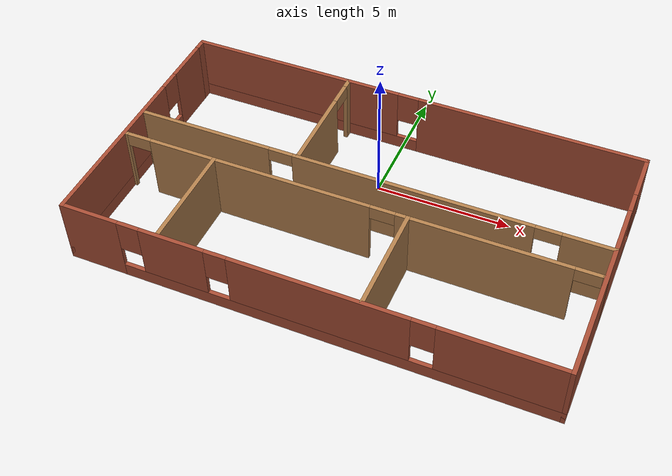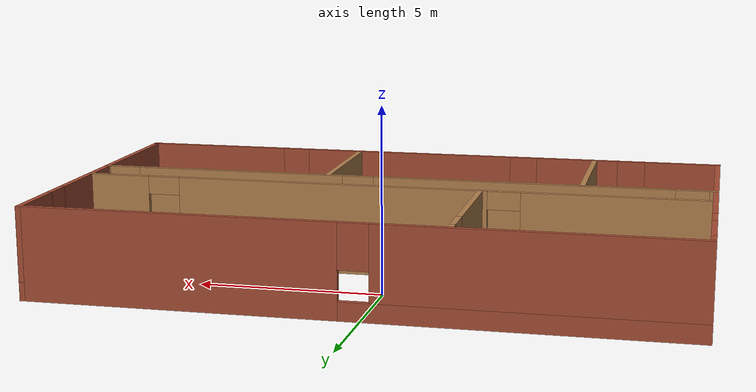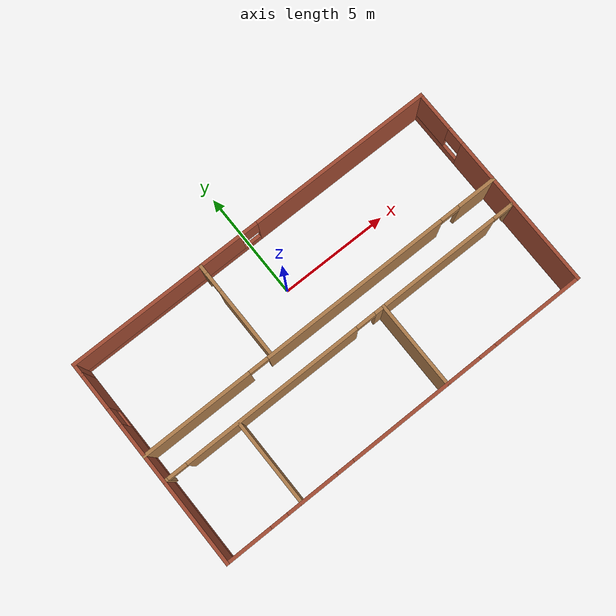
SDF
<?xml version='1.0'?>
<sdf version='1.7'>
  <model name='my_world3'>
    <pose>0.267042 -2.318 0 0 -0 0</pose>
    <link name='Wall_28'>
      <pose>-8.67704 -0.25 0 0 -0 -1.5708</pose>
      <visual name='Wall_28_Visual_0'>
        <pose>-3.7465 0 1.25 0 -0 0</pose>
        <geometry>
          <box>
            <size>1.75701 0.15 2.5</size>
          </box>
        </geometry>
        <material>
          <script>
            <uri>file://media/materials/scripts/gazebo.material</uri>
            <name>Gazebo/Bricks</name>
          </script>
          <ambient>1 1 1 1</ambient>
        </material>
        <meta>
          <layer>0</layer>
        </meta>
      </visual>
      <collision name='Wall_28_Collision_0'>
        <geometry>
          <box>
            <size>1.75701 0.15 2.5</size>
          </box>
        </geometry>
        <pose>-3.7465 0 1.25 0 -0 0</pose>
      </collision>
      <visual name='Wall_28_Visual_1'>
        <pose>0.878504 0 0.25 0 -0 0</pose>
        <geometry>
          <box>
            <size>7.49299 0.15 0.5</size>
          </box>
        </geometry>
        <material>
          <script>
            <uri>file://media/materials/scripts/gazebo.material</uri>
            <name>Gazebo/Bricks</name>
          </script>
          <ambient>1 1 1 1</ambient>
        </material>
        <meta>
          <layer>0</layer>
        </meta>
      </visual>
      <collision name='Wall_28_Collision_1'>
        <geometry>
          <box>
            <size>7.49299 0.15 0.5</size>
          </box>
        </geometry>
        <pose>0.878504 0 0.25 0 -0 0</pose>
      </collision>
      <visual name='Wall_28_Visual_2'>
        <pose>1.2785 0 1.5 0 -0 0</pose>
        <geometry>
          <box>
            <size>6.69299 0.15 2</size>
          </box>
        </geometry>
        <material>
          <script>
            <uri>file://media/materials/scripts/gazebo.material</uri>
            <name>Gazebo/Bricks</name>
          </script>
          <ambient>1 1 1 1</ambient>
        </material>
        <meta>
          <layer>0</layer>
        </meta>
      </visual>
      <collision name='Wall_28_Collision_2'>
        <geometry>
          <box>
            <size>6.69299 0.15 2</size>
          </box>
        </geometry>
        <pose>1.2785 0 1.5 0 -0 0</pose>
      </collision>
      <visual name='Wall_28_Visual_3'>
        <pose>-2.46799 0 1.9 0 -0 0</pose>
        <geometry>
          <box>
            <size>0.8 0.15 1.2</size>
          </box>
        </geometry>
        <material>
          <script>
            <uri>file://media/materials/scripts/gazebo.material</uri>
            <name>Gazebo/Bricks</name>
          </script>
          <ambient>1 1 1 1</ambient>
        </material>
        <meta>
          <layer>0</layer>
        </meta>
      </visual>
      <collision name='Wall_28_Collision_3'>
        <geometry>
          <box>
            <size>0.8 0.15 1.2</size>
          </box>
        </geometry>
        <pose>-2.46799 0 1.9 0 -0 0</pose>
      </collision>
    </link>
    <link name='Wall_29'>
      <pose>-0.002042 -4.8 0 0 -0 0</pose>
      <visual name='Wall_29_Visual_0'>
        <pose>-7.66342 0 1.25 0 -0 0</pose>
        <geometry>
          <box>
            <size>2.17317 0.15 2.5</size>
          </box>
        </geometry>
        <material>
          <script>
            <uri>file://media/materials/scripts/gazebo.material</uri>
            <name>Gazebo/Bricks</name>
          </script>
          <ambient>1 1 1 1</ambient>
        </material>
        <meta>
          <layer>0</layer>
        </meta>
      </visual>
      <collision name='Wall_29_Collision_0'>
        <geometry>
          <box>
            <size>2.17317 0.15 2.5</size>
          </box>
        </geometry>
        <pose>-7.66342 0 1.25 0 -0 0</pose>
      </collision>
      <visual name='Wall_29_Visual_1'>
        <pose>1.08658 0 0.25 0 -0 0</pose>
        <geometry>
          <box>
            <size>15.3268 0.15 0.5</size>
          </box>
        </geometry>
        <material>
          <script>
            <uri>file://media/materials/scripts/gazebo.material</uri>
            <name>Gazebo/Bricks</name>
          </script>
          <ambient>1 1 1 1</ambient>
        </material>
        <meta>
          <layer>0</layer>
        </meta>
      </visual>
      <collision name='Wall_29_Collision_1'>
        <geometry>
          <box>
            <size>15.3268 0.15 0.5</size>
          </box>
        </geometry>
        <pose>1.08658 0 0.25 0 -0 0</pose>
      </collision>
      <visual name='Wall_29_Visual_2'>
        <pose>-4.58116 0 1.5 0 -0 0</pose>
        <geometry>
          <box>
            <size>2.39135 0.15 2</size>
          </box>
        </geometry>
        <material>
          <script>
            <uri>file://media/materials/scripts/gazebo.material</uri>
            <name>Gazebo/Bricks</name>
          </script>
          <ambient>1 1 1 1</ambient>
        </material>
        <meta>
          <layer>0</layer>
        </meta>
      </visual>
      <collision name='Wall_29_Collision_2'>
        <geometry>
          <box>
            <size>2.39135 0.15 2</size>
          </box>
        </geometry>
        <pose>-4.58116 0 1.5 0 -0 0</pose>
      </collision>
      <visual name='Wall_29_Visual_3'>
        <pose>0.5411 0 1.5 0 -0 0</pose>
        <geometry>
          <box>
            <size>6.25316 0.15 2</size>
          </box>
        </geometry>
        <material>
          <script>
            <uri>file://media/materials/scripts/gazebo.material</uri>
            <name>Gazebo/Bricks</name>
          </script>
          <ambient>1 1 1 1</ambient>
        </material>
        <meta>
          <layer>0</layer>
        </meta>
      </visual>
      <collision name='Wall_29_Collision_3'>
        <geometry>
          <box>
            <size>6.25316 0.15 2</size>
          </box>
        </geometry>
        <pose>0.5411 0 1.5 0 -0 0</pose>
      </collision>
      <visual name='Wall_29_Visual_4'>
        <pose>6.60884 0 1.5 0 -0 0</pose>
        <geometry>
          <box>
            <size>4.28232 0.15 2</size>
          </box>
        </geometry>
        <material>
          <script>
            <uri>file://media/materials/scripts/gazebo.material</uri>
            <name>Gazebo/Bricks</name>
          </script>
          <ambient>1 1 1 1</ambient>
        </material>
        <meta>
          <layer>0</layer>
        </meta>
      </visual>
      <collision name='Wall_29_Collision_4'>
        <geometry>
          <box>
            <size>4.28232 0.15 2</size>
          </box>
        </geometry>
        <pose>6.60884 0 1.5 0 -0 0</pose>
      </collision>
      <visual name='Wall_29_Visual_5'>
        <pose>-6.17683 0 1.9 0 -0 0</pose>
        <geometry>
          <box>
            <size>0.8 0.15 1.2</size>
          </box>
        </geometry>
        <material>
          <script>
            <uri>file://media/materials/scripts/gazebo.material</uri>
            <name>Gazebo/Bricks</name>
          </script>
          <ambient>1 1 1 1</ambient>
        </material>
        <meta>
          <layer>0</layer>
        </meta>
      </visual>
      <collision name='Wall_29_Collision_5'>
        <geometry>
          <box>
            <size>0.8 0.15 1.2</size>
          </box>
        </geometry>
        <pose>-6.17683 0 1.9 0 -0 0</pose>
      </collision>
      <visual name='Wall_29_Visual_6'>
        <pose>-2.98548 0 1.9 0 -0 0</pose>
        <geometry>
          <box>
            <size>0.8 0.15 1.2</size>
          </box>
        </geometry>
        <material>
          <script>
            <uri>file://media/materials/scripts/gazebo.material</uri>
            <name>Gazebo/Bricks</name>
          </script>
          <ambient>1 1 1 1</ambient>
        </material>
        <meta>
          <layer>0</layer>
        </meta>
      </visual>
      <collision name='Wall_29_Collision_6'>
        <geometry>
          <box>
            <size>0.8 0.15 1.2</size>
          </box>
        </geometry>
        <pose>-2.98548 0 1.9 0 -0 0</pose>
      </collision>
      <visual name='Wall_29_Visual_7'>
        <pose>4.06768 0 1.9 0 -0 0</pose>
        <geometry>
          <box>
            <size>0.8 0.15 1.2</size>
          </box>
        </geometry>
        <material>
          <script>
            <uri>file://media/materials/scripts/gazebo.material</uri>
            <name>Gazebo/Bricks</name>
          </script>
          <ambient>1 1 1 1</ambient>
        </material>
        <meta>
          <layer>0</layer>
        </meta>
      </visual>
      <collision name='Wall_29_Collision_7'>
        <geometry>
          <box>
            <size>0.8 0.15 1.2</size>
          </box>
        </geometry>
        <pose>4.06768 0 1.9 0 -0 0</pose>
      </collision>
    </link>
    <link name='Wall_30'>
      <pose>8.67296 0 0 0 -0 1.5708</pose>
      <visual name='Wall_30_Visual_0'>
        <pose>-1.32737 0 1.25 0 -0 0</pose>
        <geometry>
          <box>
            <size>7.09526 0.15 2.5</size>
          </box>
        </geometry>
        <material>
          <script>
            <uri>file://media/materials/scripts/gazebo.material</uri>
            <name>Gazebo/Bricks</name>
          </script>
          <ambient>1 1 1 1</ambient>
        </material>
        <meta>
          <layer>0</layer>
        </meta>
      </visual>
      <collision name='Wall_30_Collision_0'>
        <geometry>
          <box>
            <size>7.09526 0.15 2.5</size>
          </box>
        </geometry>
        <pose>-1.32737 0 1.25 0 -0 0</pose>
      </collision>
      <visual name='Wall_30_Visual_1'>
        <pose>3.54763 0 0.25 0 -0 0</pose>
        <geometry>
          <box>
            <size>2.65474 0.15 0.5</size>
          </box>
        </geometry>
        <material>
          <script>
            <uri>file://media/materials/scripts/gazebo.material</uri>
            <name>Gazebo/Bricks</name>
          </script>
          <ambient>1 1 1 1</ambient>
        </material>
        <meta>
          <layer>0</layer>
        </meta>
      </visual>
      <collision name='Wall_30_Collision_1'>
        <geometry>
          <box>
            <size>2.65474 0.15 0.5</size>
          </box>
        </geometry>
        <pose>3.54763 0 0.25 0 -0 0</pose>
      </collision>
      <visual name='Wall_30_Visual_2'>
        <pose>3.94763 0 1.5 0 -0 0</pose>
        <geometry>
          <box>
            <size>1.85474 0.15 2</size>
          </box>
        </geometry>
        <material>
          <script>
            <uri>file://media/materials/scripts/gazebo.material</uri>
            <name>Gazebo/Bricks</name>
          </script>
          <ambient>1 1 1 1</ambient>
        </material>
        <meta>
          <layer>0</layer>
        </meta>
      </visual>
      <collision name='Wall_30_Collision_2'>
        <geometry>
          <box>
            <size>1.85474 0.15 2</size>
          </box>
        </geometry>
        <pose>3.94763 0 1.5 0 -0 0</pose>
      </collision>
      <visual name='Wall_30_Visual_3'>
        <pose>2.62026 0 1.9 0 -0 0</pose>
        <geometry>
          <box>
            <size>0.8 0.15 1.2</size>
          </box>
        </geometry>
        <material>
          <script>
            <uri>file://media/materials/scripts/gazebo.material</uri>
            <name>Gazebo/Bricks</name>
          </script>
          <ambient>1 1 1 1</ambient>
        </material>
        <meta>
          <layer>0</layer>
        </meta>
      </visual>
      <collision name='Wall_30_Collision_3'>
        <geometry>
          <box>
            <size>0.8 0.15 1.2</size>
          </box>
        </geometry>
        <pose>2.62026 0 1.9 0 -0 0</pose>
      </collision>
    </link>
    <link name='Wall_31'>
      <pose>-0.002042 4.8 0 0 -0 3.14159</pose>
      <visual name='Wall_31_Visual_0'>
        <pose>-4.51703 0 1.25 0 -0 0</pose>
        <geometry>
          <box>
            <size>8.46594 0.15 2.5</size>
          </box>
        </geometry>
        <material>
          <script>
            <uri>file://media/materials/scripts/gazebo.material</uri>
            <name>Gazebo/Bricks</name>
          </script>
          <ambient>1 1 1 1</ambient>
        </material>
        <meta>
          <layer>0</layer>
        </meta>
      </visual>
      <collision name='Wall_31_Collision_0'>
        <geometry>
          <box>
            <size>8.46594 0.15 2.5</size>
          </box>
        </geometry>
        <pose>-4.51703 0 1.25 0 -0 0</pose>
      </collision>
      <visual name='Wall_31_Visual_1'>
        <pose>4.23297 0 0.25 0 -0 0</pose>
        <geometry>
          <box>
            <size>9.03406 0.15 0.5</size>
          </box>
        </geometry>
        <material>
          <script>
            <uri>file://media/materials/scripts/gazebo.material</uri>
            <name>Gazebo/Bricks</name>
          </script>
          <ambient>1 1 1 1</ambient>
        </material>
        <meta>
          <layer>0</layer>
        </meta>
      </visual>
      <collision name='Wall_31_Collision_1'>
        <geometry>
          <box>
            <size>9.03406 0.15 0.5</size>
          </box>
        </geometry>
        <pose>4.23297 0 0.25 0 -0 0</pose>
      </collision>
      <visual name='Wall_31_Visual_2'>
        <pose>4.63297 0 1.5 0 -0 0</pose>
        <geometry>
          <box>
            <size>8.23406 0.15 2</size>
          </box>
        </geometry>
        <material>
          <script>
            <uri>file://media/materials/scripts/gazebo.material</uri>
            <name>Gazebo/Bricks</name>
          </script>
          <ambient>1 1 1 1</ambient>
        </material>
        <meta>
          <layer>0</layer>
        </meta>
      </visual>
      <collision name='Wall_31_Collision_2'>
        <geometry>
          <box>
            <size>8.23406 0.15 2</size>
          </box>
        </geometry>
        <pose>4.63297 0 1.5 0 -0 0</pose>
      </collision>
      <visual name='Wall_31_Visual_3'>
        <pose>0.115943 0 1.9 0 -0 0</pose>
        <geometry>
          <box>
            <size>0.8 0.15 1.2</size>
          </box>
        </geometry>
        <material>
          <script>
            <uri>file://media/materials/scripts/gazebo.material</uri>
            <name>Gazebo/Bricks</name>
          </script>
          <ambient>1 1 1 1</ambient>
        </material>
        <meta>
          <layer>0</layer>
        </meta>
      </visual>
      <collision name='Wall_31_Collision_3'>
        <geometry>
          <box>
            <size>0.8 0.15 1.2</size>
          </box>
        </geometry>
        <pose>0.115943 0 1.9 0 -0 0</pose>
      </collision>
    </link>
    <link name='Wall_32'>
      <collision name='Wall_32_Collision'>
        <geometry>
          <box>
            <size>0.65 0.15 2.5</size>
          </box>
        </geometry>
        <pose>0 0 1.25 0 -0 0</pose>
      </collision>
      <visual name='Wall_32_Visual'>
        <pose>0 0 1.25 0 -0 0</pose>
        <geometry>
          <box>
            <size>0.65 0.15 2.5</size>
          </box>
        </geometry>
        <material>
          <script>
            <uri>file://media/materials/scripts/gazebo.material</uri>
            <name>Gazebo/Bricks</name>
          </script>
          <ambient>1 1 1 1</ambient>
        </material>
        <meta>
          <layer>0</layer>
        </meta>
      </visual>
      <pose>-8.67704 4.55 0 0 -0 -1.5708</pose>
    </link>
    <link name='Wall_34'>
      <pose>-0.002042 0.321 0 0 -0 0</pose>
      <visual name='Wall_34_Visual_0'>
        <pose>-6.17319 0 1.25 0 -0 0</pose>
        <geometry>
          <box>
            <size>5.15361 0.15 2.5</size>
          </box>
        </geometry>
        <material>
          <script>
            <uri>file://media/materials/scripts/gazebo.material</uri>
            <name>Gazebo/Wood</name>
          </script>
          <ambient>1 1 1 1</ambient>
        </material>
        <meta>
          <layer>0</layer>
        </meta>
      </visual>
      <collision name='Wall_34_Collision_0'>
        <geometry>
          <box>
            <size>5.15361 0.15 2.5</size>
          </box>
        </geometry>
        <pose>-6.17319 0 1.25 0 -0 0</pose>
      </collision>
      <visual name='Wall_34_Visual_1'>
        <pose>1.65405 0 1.25 0 -0 0</pose>
        <geometry>
          <box>
            <size>8.70088 0.15 2.5</size>
          </box>
        </geometry>
        <material>
          <script>
            <uri>file://media/materials/scripts/gazebo.material</uri>
            <name>Gazebo/Wood</name>
          </script>
          <ambient>1 1 1 1</ambient>
        </material>
        <meta>
          <layer>0</layer>
        </meta>
      </visual>
      <collision name='Wall_34_Collision_1'>
        <geometry>
          <box>
            <size>8.70088 0.15 2.5</size>
          </box>
        </geometry>
        <pose>1.65405 0 1.25 0 -0 0</pose>
      </collision>
      <visual name='Wall_34_Visual_2'>
        <pose>7.82724 0 1.25 0 -0 0</pose>
        <geometry>
          <box>
            <size>1.84551 0.15 2.5</size>
          </box>
        </geometry>
        <material>
          <script>
            <uri>file://media/materials/scripts/gazebo.material</uri>
            <name>Gazebo/Wood</name>
          </script>
          <ambient>1 1 1 1</ambient>
        </material>
        <meta>
          <layer>0</layer>
        </meta>
      </visual>
      <collision name='Wall_34_Collision_2'>
        <geometry>
          <box>
            <size>1.84551 0.15 2.5</size>
          </box>
        </geometry>
        <pose>7.82724 0 1.25 0 -0 0</pose>
      </collision>
      <visual name='Wall_34_Visual_3'>
        <pose>-3.14639 0 2.25 0 -0 0</pose>
        <geometry>
          <box>
            <size>0.9 0.15 0.5</size>
          </box>
        </geometry>
        <material>
          <script>
            <uri>file://media/materials/scripts/gazebo.material</uri>
            <name>Gazebo/Wood</name>
          </script>
          <ambient>1 1 1 1</ambient>
        </material>
        <meta>
          <layer>0</layer>
        </meta>
      </visual>
      <collision name='Wall_34_Collision_3'>
        <geometry>
          <box>
            <size>0.9 0.15 0.5</size>
          </box>
        </geometry>
        <pose>-3.14639 0 2.25 0 -0 0</pose>
      </collision>
      <visual name='Wall_34_Visual_4'>
        <pose>6.45449 0 2.25 0 -0 0</pose>
        <geometry>
          <box>
            <size>0.9 0.15 0.5</size>
          </box>
        </geometry>
        <material>
          <script>
            <uri>file://media/materials/scripts/gazebo.material</uri>
            <name>Gazebo/Wood</name>
          </script>
          <ambient>1 1 1 1</ambient>
        </material>
        <meta>
          <layer>0</layer>
        </meta>
      </visual>
      <collision name='Wall_34_Collision_4'>
        <geometry>
          <box>
            <size>0.9 0.15 0.5</size>
          </box>
        </geometry>
        <pose>6.45449 0 2.25 0 -0 0</pose>
      </collision>
    </link>
    <link name='Wall_36'>
      <pose>-2.5048 2.59071 0 0 -0 -1.5708</pose>
      <visual name='Wall_36_Visual_0'>
        <pose>-2.04864 0 1.25 0 -0 0</pose>
        <geometry>
          <box>
            <size>0.402725 0.15 2.5</size>
          </box>
        </geometry>
        <material>
          <script>
            <uri>file://media/materials/scripts/gazebo.material</uri>
            <name>Gazebo/Wood</name>
          </script>
          <ambient>1 1 1 1</ambient>
        </material>
        <meta>
          <layer>0</layer>
        </meta>
      </visual>
      <collision name='Wall_36_Collision_0'>
        <geometry>
          <box>
            <size>0.402725 0.15 2.5</size>
          </box>
        </geometry>
        <pose>-2.04864 0 1.25 0 -0 0</pose>
      </collision>
      <visual name='Wall_36_Visual_1'>
        <pose>0.651362 0 1.25 0 -0 0</pose>
        <geometry>
          <box>
            <size>3.19727 0.15 2.5</size>
          </box>
        </geometry>
        <material>
          <script>
            <uri>file://media/materials/scripts/gazebo.material</uri>
            <name>Gazebo/Wood</name>
          </script>
          <ambient>1 1 1 1</ambient>
        </material>
        <meta>
          <layer>0</layer>
        </meta>
      </visual>
      <collision name='Wall_36_Collision_1'>
        <geometry>
          <box>
            <size>3.19727 0.15 2.5</size>
          </box>
        </geometry>
        <pose>0.651362 0 1.25 0 -0 0</pose>
      </collision>
      <visual name='Wall_36_Visual_2'>
        <pose>-1.39728 0 2.25 0 -0 0</pose>
        <geometry>
          <box>
            <size>0.9 0.15 0.5</size>
          </box>
        </geometry>
        <material>
          <script>
            <uri>file://media/materials/scripts/gazebo.material</uri>
            <name>Gazebo/Wood</name>
          </script>
          <ambient>1 1 1 1</ambient>
        </material>
        <meta>
          <layer>0</layer>
        </meta>
      </visual>
      <collision name='Wall_36_Collision_2'>
        <geometry>
          <box>
            <size>0.9 0.15 0.5</size>
          </box>
        </geometry>
        <pose>-1.39728 0 2.25 0 -0 0</pose>
      </collision>
    </link>
    <link name='Wall_40'>
      <pose>0.002043 -0.919726 0 0 -0 0</pose>
      <visual name='Wall_40_Visual_0'>
        <pose>-8.62909 0 1.25 0 -0 0</pose>
        <geometry>
          <box>
            <size>0.241816 0.15 2.5</size>
          </box>
        </geometry>
        <material>
          <script>
            <uri>file://media/materials/scripts/gazebo.material</uri>
            <name>Gazebo/Wood</name>
          </script>
          <ambient>1 1 1 1</ambient>
        </material>
        <meta>
          <layer>0</layer>
        </meta>
      </visual>
      <collision name='Wall_40_Collision_0'>
        <geometry>
          <box>
            <size>0.241816 0.15 2.5</size>
          </box>
        </geometry>
        <pose>-8.62909 0 1.25 0 -0 0</pose>
      </collision>
      <visual name='Wall_40_Visual_1'>
        <pose>-3.44547 0 1.25 0 -0 0</pose>
        <geometry>
          <box>
            <size>8.32542 0.15 2.5</size>
          </box>
        </geometry>
        <material>
          <script>
            <uri>file://media/materials/scripts/gazebo.material</uri>
            <name>Gazebo/Wood</name>
          </script>
          <ambient>1 1 1 1</ambient>
        </material>
        <meta>
          <layer>0</layer>
        </meta>
      </visual>
      <collision name='Wall_40_Collision_1'>
        <geometry>
          <box>
            <size>8.32542 0.15 2.5</size>
          </box>
        </geometry>
        <pose>-3.44547 0 1.25 0 -0 0</pose>
      </collision>
      <visual name='Wall_40_Visual_2'>
        <pose>4.64018 0 1.25 0 -0 0</pose>
        <geometry>
          <box>
            <size>6.04589 0.15 2.5</size>
          </box>
        </geometry>
        <material>
          <script>
            <uri>file://media/materials/scripts/gazebo.material</uri>
            <name>Gazebo/Wood</name>
          </script>
          <ambient>1 1 1 1</ambient>
        </material>
        <meta>
          <layer>0</layer>
        </meta>
      </visual>
      <collision name='Wall_40_Collision_2'>
        <geometry>
          <box>
            <size>6.04589 0.15 2.5</size>
          </box>
        </geometry>
        <pose>4.64018 0 1.25 0 -0 0</pose>
      </collision>
      <visual name='Wall_40_Visual_3'>
        <pose>8.65656 0 1.25 0 -0 0</pose>
        <geometry>
          <box>
            <size>0.186872 0.15 2.5</size>
          </box>
        </geometry>
        <material>
          <script>
            <uri>file://media/materials/scripts/gazebo.material</uri>
            <name>Gazebo/Wood</name>
          </script>
          <ambient>1 1 1 1</ambient>
        </material>
        <meta>
          <layer>0</layer>
        </meta>
      </visual>
      <collision name='Wall_40_Collision_3'>
        <geometry>
          <box>
            <size>0.186872 0.15 2.5</size>
          </box>
        </geometry>
        <pose>8.65656 0 1.25 0 -0 0</pose>
      </collision>
      <visual name='Wall_40_Visual_4'>
        <pose>-8.05818 0 2.25 0 -0 0</pose>
        <geometry>
          <box>
            <size>0.9 0.15 0.5</size>
          </box>
        </geometry>
        <material>
          <script>
            <uri>file://media/materials/scripts/gazebo.material</uri>
            <name>Gazebo/Wood</name>
          </script>
          <ambient>1 1 1 1</ambient>
        </material>
        <meta>
          <layer>0</layer>
        </meta>
      </visual>
      <collision name='Wall_40_Collision_4'>
        <geometry>
          <box>
            <size>0.9 0.15 0.5</size>
          </box>
        </geometry>
        <pose>-8.05818 0 2.25 0 -0 0</pose>
      </collision>
      <visual name='Wall_40_Visual_5'>
        <pose>1.16724 0 2.25 0 -0 0</pose>
        <geometry>
          <box>
            <size>0.9 0.15 0.5</size>
          </box>
        </geometry>
        <material>
          <script>
            <uri>file://media/materials/scripts/gazebo.material</uri>
            <name>Gazebo/Wood</name>
          </script>
          <ambient>1 1 1 1</ambient>
        </material>
        <meta>
          <layer>0</layer>
        </meta>
      </visual>
      <collision name='Wall_40_Collision_5'>
        <geometry>
          <box>
            <size>0.9 0.15 0.5</size>
          </box>
        </geometry>
        <pose>1.16724 0 2.25 0 -0 0</pose>
      </collision>
      <visual name='Wall_40_Visual_6'>
        <pose>8.11313 0 2.25 0 -0 0</pose>
        <geometry>
          <box>
            <size>0.9 0.15 0.5</size>
          </box>
        </geometry>
        <material>
          <script>
            <uri>file://media/materials/scripts/gazebo.material</uri>
            <name>Gazebo/Wood</name>
          </script>
          <ambient>1 1 1 1</ambient>
        </material>
        <meta>
          <layer>0</layer>
        </meta>
      </visual>
      <collision name='Wall_40_Collision_6'>
        <geometry>
          <box>
            <size>0.9 0.15 0.5</size>
          </box>
        </geometry>
        <pose>8.11313 0 2.25 0 -0 0</pose>
      </collision>
    </link>
    <link name='Wall_42'>
      <collision name='Wall_42_Collision'>
        <geometry>
          <box>
            <size>4 0.15 2.5</size>
          </box>
        </geometry>
        <pose>0 0 1.25 0 -0 0</pose>
      </collision>
      <visual name='Wall_42_Visual'>
        <pose>0 0 1.25 0 -0 0</pose>
        <geometry>
          <box>
            <size>4 0.15 2.5</size>
          </box>
        </geometry>
        <material>
          <script>
            <uri>file://media/materials/scripts/gazebo.material</uri>
            <name>Gazebo/Wood</name>
          </script>
          <ambient>1 1 1 1</ambient>
        </material>
        <meta>
          <layer>0</layer>
        </meta>
      </visual>
      <pose>-5.10615 -2.84473 0 0 -0 -1.5708</pose>
    </link>
    <link name='Wall_45'>
      <collision name='Wall_45_Collision'>
        <geometry>
          <box>
            <size>4 0.15 2.5</size>
          </box>
        </geometry>
        <pose>0 0 1.25 0 -0 0</pose>
      </collision>
      <visual name='Wall_45_Visual'>
        <pose>0 0 1.25 0 -0 0</pose>
        <geometry>
          <box>
            <size>4 0.15 2.5</size>
          </box>
        </geometry>
        <material>
          <script>
            <uri>file://media/materials/scripts/gazebo.material</uri>
            <name>Gazebo/Wood</name>
          </script>
          <ambient>1 1 1 1</ambient>
        </material>
        <meta>
          <layer>0</layer>
        </meta>
      </visual>
      <pose>2.05428 -2.84473 0 0 -0 -1.5708</pose>
    </link>
    <static>1</static>
  </model>
</sdf>
